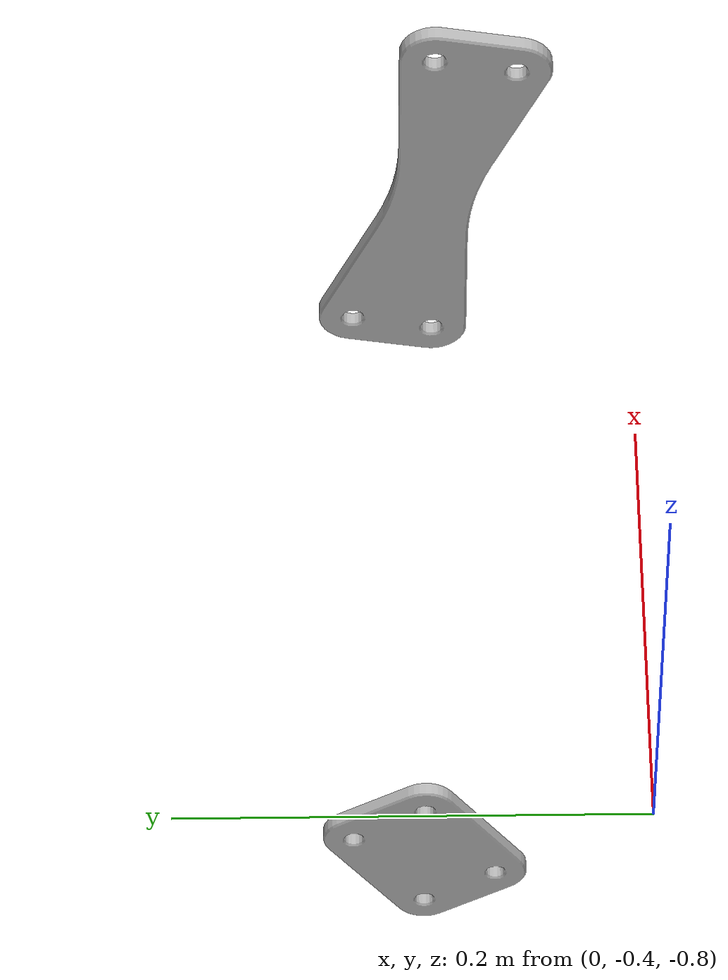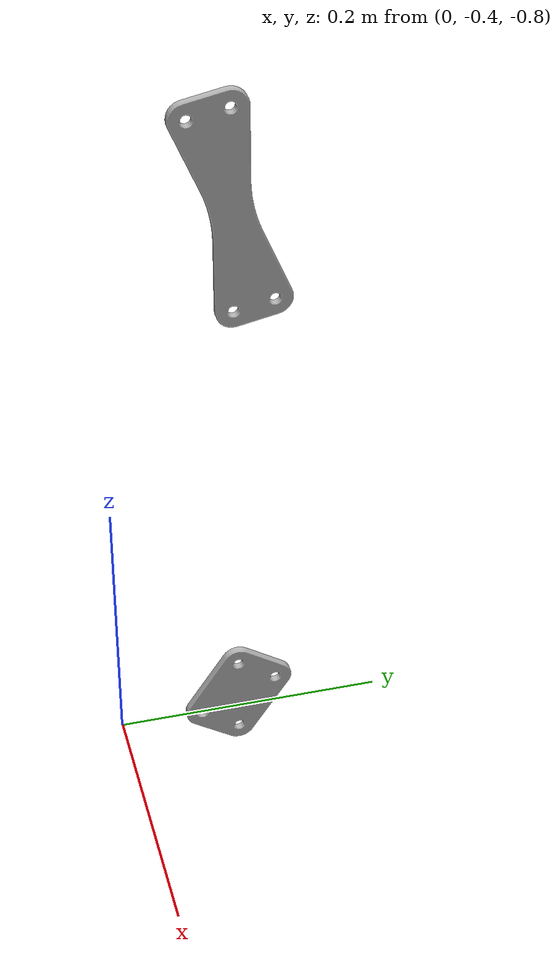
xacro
<?xml version="1.0" ?>
<robot name="Lower" xmlns:xacro="http://www.ros.org/wiki/xacro">

<xacro:include filename="$(find Lower_description)/urdf/materials.xacro" />
<xacro:include filename="$(find Lower_description)/urdf/Lower.trans" />
<xacro:include filename="$(find Lower_description)/urdf/Lower.gazebo" />
<link name="base_link">
  <inertial>
    <origin rpy="0 0 0" xyz="-0.015875000000000205 -0.3047999237506079 -0.5393469789787211"/>
    <mass value="0.5724939841863258"/>
    <inertia ixx="0.025495" ixy="-0.0" ixz="0.0" iyy="0.025326" iyz="0.000161" izz="0.000173"/>
  </inertial>
  <visual>
    <origin rpy="0 0 0" xyz="0 0 0"/>
    <geometry>
      <mesh filename="package://Lower_description/meshes/base_link.stl" scale="0.001 0.001 0.001"/>
    </geometry>
    <material name="silver"/>
  </visual>
  <collision>
    <origin rpy="0 0 0" xyz="0 0 0"/>
    <geometry>
      <mesh filename="package://Lower_description/meshes/base_link.stl" scale="0.001 0.001 0.001"/>
    </geometry>
  </collision>
</link>

</robot>

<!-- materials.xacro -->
<robot name="Lower" xmlns:xacro="http://www.ros.org/wiki/xacro" >

<material name="silver">
  <color rgba="0.700 0.700 0.700 1.000"/>
</material>

</robot>

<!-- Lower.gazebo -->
<robot name="Lower" xmlns:xacro="http://www.ros.org/wiki/xacro" >

<xacro:property name="body_color" value="Gazebo/Silver" />

<gazebo>
  <plugin filename="libgazebo_ros_control.so" name="control"/>
</gazebo>
<gazebo reference="base_link">
  <material>${body_color}</material>
  <mu1>0.2</mu1>
  <mu2>0.2</mu2>
  <selfCollide>true</selfCollide>
  <gravity>true</gravity>
</gazebo>

</robot>
